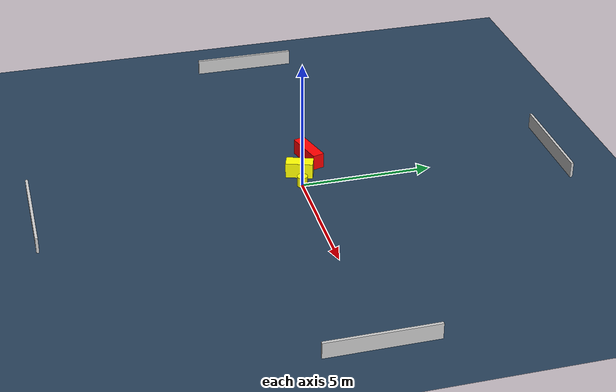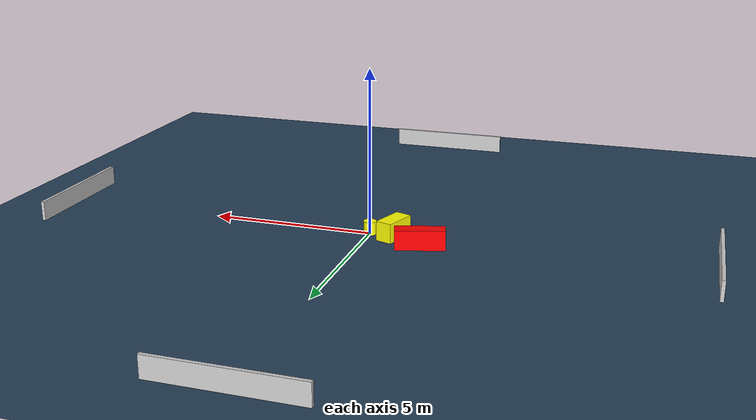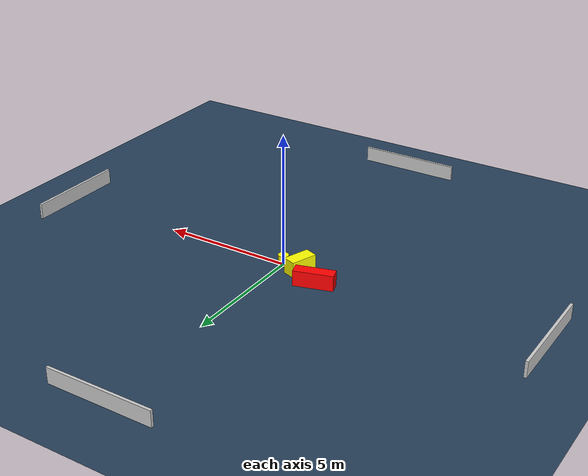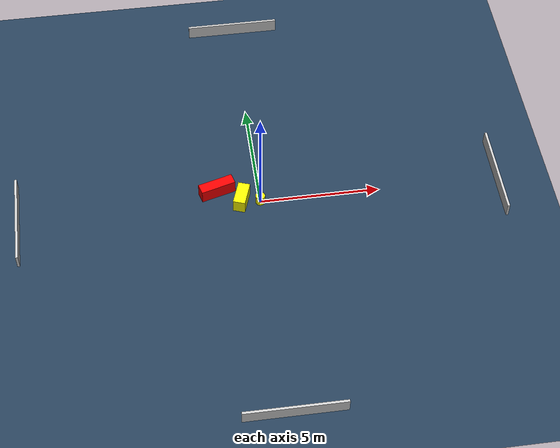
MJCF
<?xml version="1.0" ?>
<mujoco model="generated_environment">
  <option timestep="0.01" integrator="RK4" cone="elliptic"/>
  <default>
    <geom density="1"/>
  </default>
  <asset>
    <texture builtin="gradient" height="3072" name="skybox" rgb1="0.3 0.5 0.7" rgb2="0 0 0" type="skybox" width="512"/>
    <texture builtin="checker" height="300" name="groundplane" rgb1="0.2 0.3 0.4" rgb2="0.1 0.2 0.3" type="2d" width="300"/>
    <material name="groundplane" reflectance="0.2" texrepeat="5 5" texture="groundplane"/>
  </asset>
  <worldbody>
    <light dir="0 0 -1" directional="true" pos="0 0 1.5"/>
    <geom condim="3" friction="0.5 0.005 0.001" material="groundplane" name="floor" pos="0 0 0" size="0 0 0.05" type="plane"/>
    <body name="walls">
      <geom name="wall_1" condim="4" pos="-10.0 0.0 0.3" rgba="0.800000011920929 0.800000011920929 0.800000011920929 1.0" size="0.05 2.0 0.3" type="box"/>
      <geom name="wall_2" condim="4" pos="10.0 0.0 0.3" rgba="0.800000011920929 0.800000011920929 0.800000011920929 1.0" size="0.05 2.0 0.3" type="box"/>
      <geom name="wall_3" condim="4" pos="0.0 -10.0 0.3" rgba="0.800000011920929 0.800000011920929 0.800000011920929 1.0" size="2.0 0.05 0.3" type="box"/>
      <geom name="wall_4" condim="4" pos="0.0 10.0 0.3" rgba="0.800000011920929 0.800000011920929 0.800000011920929 1.0" size="2.0 0.05 0.3" type="box"/>
    </body>
    <body name="robot">
      <joint name="joint_x" type="slide" pos="0 0 0" axis="1 0 0"/>
      <joint name="joint_y" type="slide" pos="0 0 0" axis="0 1 0"/>
      <geom name="robot" type="cylinder" pos="0.0 0.0 0.2" size="0.2 0.2 0.0" mass="5.0" friction="1.0 0.005 0.0001" condim="4" rgba="1.0 1.0 0.0 1.0"/>
    </body>
    <body name="obstacle_1_movable">
      <geom name="obstacle_1_movable" condim="4" pos="-0.7619666813020426 0.09471121327061614 0.3" euler="0 0 70.71940621841006" friction="0.0 0.005 0.001" rgba="1.0 1.0 0.0 1.0" size="0.5174723775150429 0.24986854302663045 0.3" type="box" mass="0.1"/>
      <joint type="free"/>
    </body>
    <body name="obstacle_2_static">
      <geom name="obstacle_2_static" condim="4" pos="-1.7274469944747355 0.7068395064401629 0.3" euler="0 0 106.04522079242638" friction="0.0 0.005 0.001" rgba="1.0 0.0 0.0 1.0" size="0.22515768929466984 0.737718648651742 0.3" type="box"/>
    </body>
  </worldbody>
  <actuator>
    <motor name="actuator_x" joint="joint_x" gear="1" ctrlrange="-1 1"/>
    <motor name="actuator_y" joint="joint_y" gear="1" ctrlrange="-1 1"/>
  </actuator>
</mujoco>
